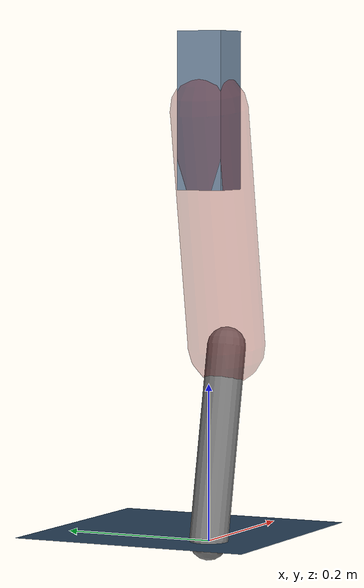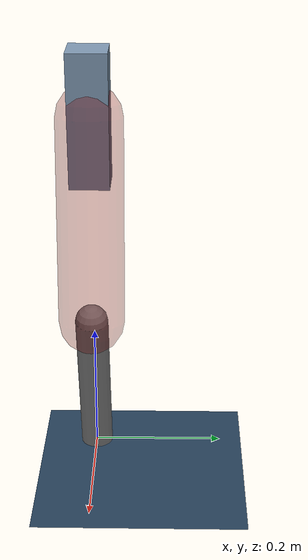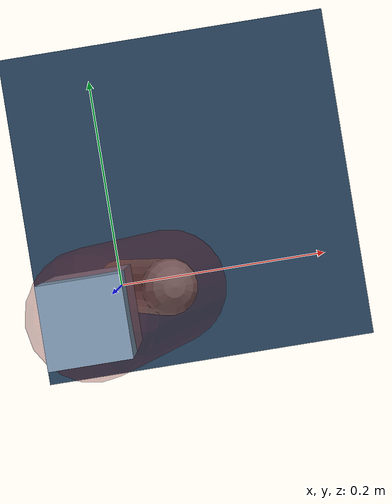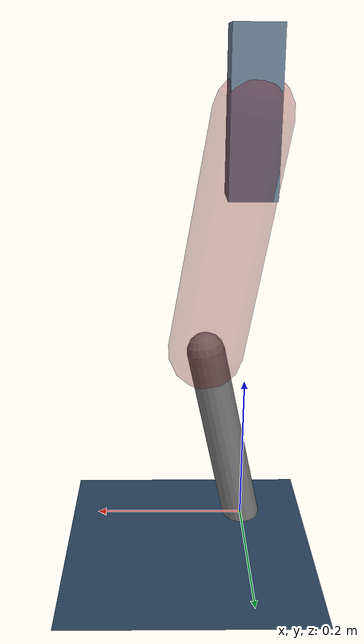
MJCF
<mujoco model="Hopper2D">
	<compiler inertiafromgeom="true" angle="radian" />
	<option timestep="0.001" integrator="implicit" cone="elliptic" solver="Newton" tolerance="1e-10" />

	<default>
		<geom contype="1" conaffinity="1" condim="3" friction="2 0.005 0.0001" solref="0.005 1" />
		<joint limited="true" damping="0.1" />
	</default>

	<asset>
		<texture name="skybox" type="skybox" builtin="gradient" rgb1=".4 .6 .8" rgb2="0 0 0" width="800" height="800" />
		<texture name="grid" type="2d" builtin="checker" rgb1=".1 .2 .3" rgb2=".2 .3 .4" width="300" height="300" mark="edge" markrgb=".2 .3 .4" />
		<material name="ground" texture="grid" texrepeat="1 1" texuniform="true" reflectance="0.1" />
		<material name="leg" rgba="0.5 0.6 0.7 1" />
	</asset>

	<worldbody>

		<geom name="floor" type="plane" size="5 5 0.25" material="ground" />

		<light directional="false" diffuse="0.8 0.8 0.8" specular="0.3 0.3 0.3" pos="0 0 2" dir="0 0 -1" />
		<light mode="targetbodycom" target="base" directional="false" diffuse="0.8 0.8 0.8" specular="0.3 0.3 0.3" pos="0 0 2" dir="0 0 -1" />

		<camera name="fixed" pos="0 -2 1" xyaxes="1 0 0 0 0 1" />
		<camera name="tracking" mode="trackcom" pos="0 -3 1" />

		<body name="root" pos="0 0 0.5467968814040836">
			<joint name="slide_x" type="slide" axis="1 0 0" range="-100 100" />
			<joint name="slide_z" type="slide" axis="0 0 1" range="0 10" />

			<body name="base" pos="0 0 0">
				<geom name="torso" type="box" size="0.03 0.03 0.1" mass="2.7880000000000003" material="leg" />

				<body name="link1" pos="0 0 0" euler="0 1.3994243343801291 0">
					<joint type="hinge" axis="0 -1 0" pos="0 0 0" name="hinge1" limited="true" range="-3.14 3.14" stiffness="0" damping="0.1" />
					<geom name="thigh" type="capsule" fromto="0 0 0 0.30638986234698584 0 0" size="0.05" rgba="0.5 0 0 0.3" mass="1.0060526283368618" />

					<body name="link2" pos="0.30638986234698584 0 0" euler="0 0.3815769349731002 0">
						<joint type="hinge" axis="0 -1 0" pos="0 0 0" name="hinge2" limited="true" range="-3.14 3.14" stiffness="0" damping="0.1" />
						<geom name="shank" type="capsule" fromto="0 0 0 0.2504070190570977 0 0" size="0.025" mass="0.4428256152456782" />

					</body>
				</body>
			</body>
		</body>
	</worldbody>

	<actuator>
		<motor name="torque1" joint="hinge1" ctrlrange="-121.26429896768687 121.26429896768687" ctrllimited="true" gear="1" />
		<motor name="torque2" joint="hinge2" ctrlrange="-96.33933323144169 96.33933323144169" ctrllimited="true" gear="1" />
	</actuator>
</mujoco>
